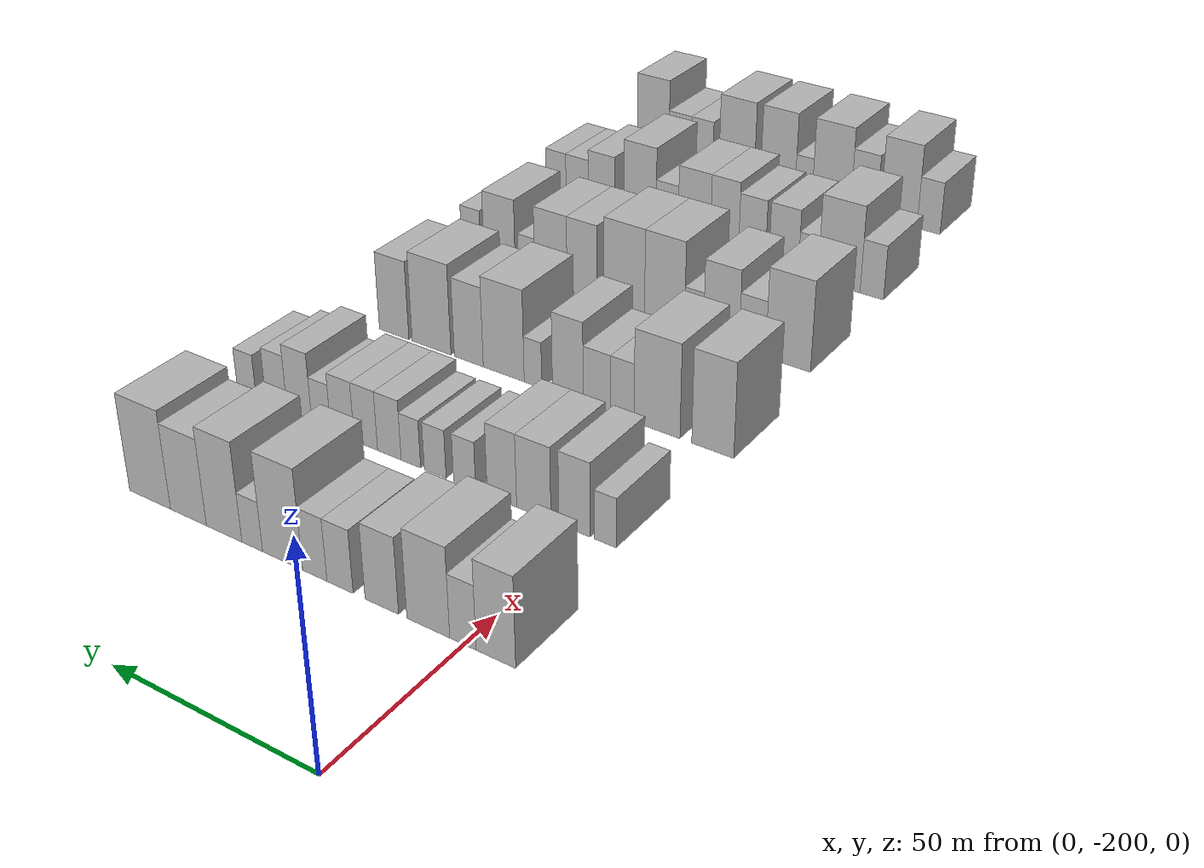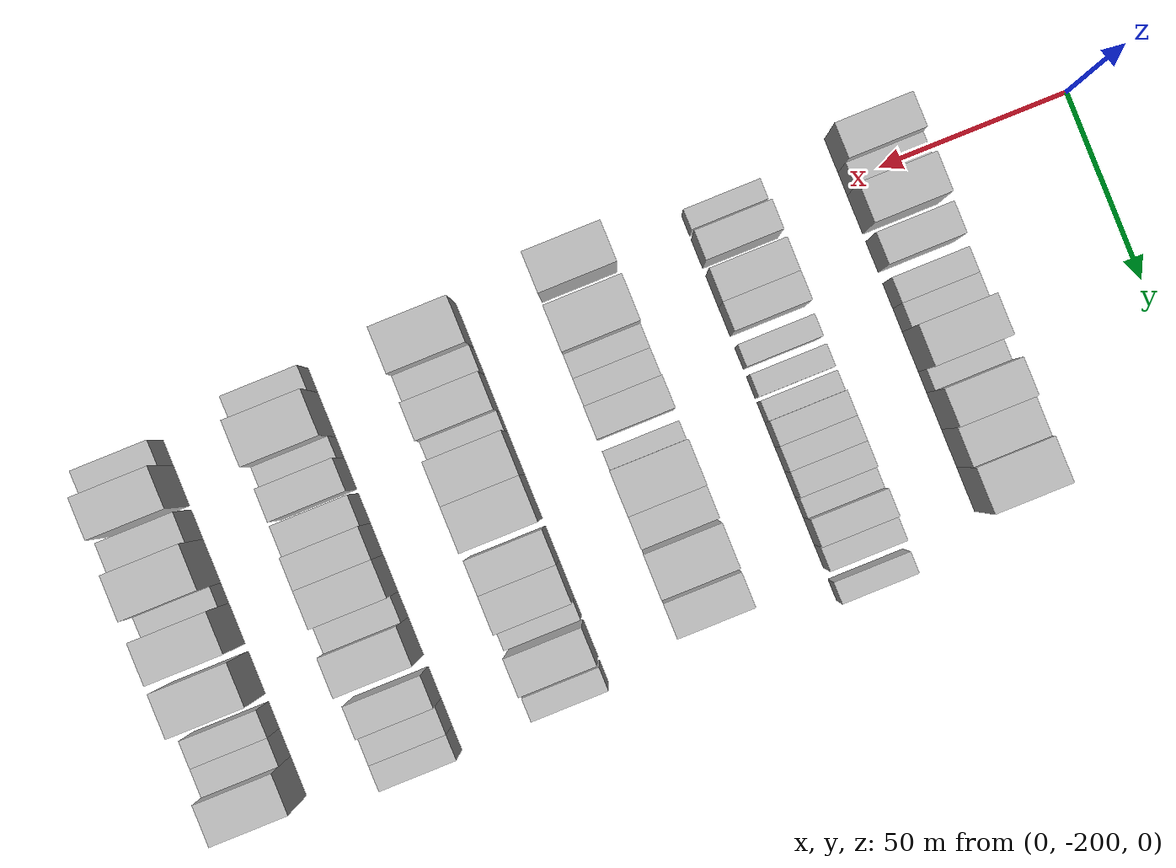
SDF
<sdf version="1.6">
 <world name="default">
  <model name="building_43">
   <static>1</static>
   <pose>50.0000 -207.1789 0 0.000000 0.000000 0.000000</pose>
   <link name="link">
    <pose>0 0 10.50 0 0 0</pose>
    <collision name="collision"><geometry><box><size>20.0000 9.0264 21.0000</size></box></geometry></collision>
    <visual name="visual">
     <cast_shadows>0</cast_shadows>
     <geometry><box><size>20.0000 9.0264 21.0000</size></box></geometry>
     <material>
      <script>
       <uri>model://HANNAS_wall/materials/scripts</uri>
       <uri>model://HANNAS_wall/materials/textures</uri>
       <name>vrc/HANNAS_wall</name>
      </script>
     </material>
    </visual>
   </link>
  </model>
  <model name="building_44">
   <static>1</static>
   <pose>50.0000 -199.5885 0 0.000000 0.000000 0.000000</pose>
   <link name="link">
    <pose>0 0 7.50 0 0 0</pose>
    <collision name="collision"><geometry><box><size>20.0000 6.1544 15.0000</size></box></geometry></collision>
    <visual name="visual">
     <cast_shadows>0</cast_shadows>
     <geometry><box><size>20.0000 6.1544 15.0000</size></box></geometry>
     <material>
      <script>
       <uri>model://HANNAS_wall/materials/scripts</uri>
       <uri>model://HANNAS_wall/materials/textures</uri>
       <name>vrc/HANNAS_wall</name>
      </script>
     </material>
    </visual>
   </link>
  </model>
  <model name="building_45">
   <static>1</static>
   <pose>50.0000 -191.4024 0 0.000000 0.000000 0.000000</pose>
   <link name="link">
    <pose>0 0 10.50 0 0 0</pose>
    <collision name="collision"><geometry><box><size>20.0000 10.2178 21.0000</size></box></geometry></collision>
    <visual name="visual">
     <cast_shadows>0</cast_shadows>
     <geometry><box><size>20.0000 10.2178 21.0000</size></box></geometry>
     <material>
      <script>
       <uri>model://HANNAS_wall/materials/scripts</uri>
       <uri>model://HANNAS_wall/materials/textures</uri>
       <name>vrc/HANNAS_wall</name>
      </script>
     </material>
    </visual>
   </link>
  </model>
  <model name="building_46">
   <static>1</static>
   <pose>50.0000 -180.1631 0 0.000000 0.000000 0.000000</pose>
   <link name="link">
    <pose>0 0 9.00 0 0 0</pose>
    <collision name="collision"><geometry><box><size>20.0000 8.2608 18.0000</size></box></geometry></collision>
    <visual name="visual">
     <cast_shadows>0</cast_shadows>
     <geometry><box><size>20.0000 8.2608 18.0000</size></box></geometry>
     <material>
      <script>
       <uri>model://HANNAS_wall/materials/scripts</uri>
       <uri>model://HANNAS_wall/materials/textures</uri>
       <name>vrc/HANNAS_wall</name>
      </script>
     </material>
    </visual>
   </link>
  </model>
  <model name="building_47">
   <static>1</static>
   <pose>50.0000 -169.7166 0 0.000000 0.000000 0.000000</pose>
   <link name="link">
    <pose>0 0 7.50 0 0 0</pose>
    <collision name="collision"><geometry><box><size>20.0000 6.6322 15.0000</size></box></geometry></collision>
    <visual name="visual">
     <cast_shadows>0</cast_shadows>
     <geometry><box><size>20.0000 6.6322 15.0000</size></box></geometry>
     <material>
      <script>
       <uri>model://HANNAS_wall/materials/scripts</uri>
       <uri>model://HANNAS_wall/materials/textures</uri>
       <name>vrc/HANNAS_wall</name>
      </script>
     </material>
    </visual>
   </link>
  </model>
  <model name="building_48">
   <static>1</static>
   <pose>50.0000 -163.2680 0 0.000000 0.000000 0.000000</pose>
   <link name="link">
    <pose>0 0 7.50 0 0 0</pose>
    <collision name="collision"><geometry><box><size>20.0000 6.2649 15.0000</size></box></geometry></collision>
    <visual name="visual">
     <cast_shadows>0</cast_shadows>
     <geometry><box><size>20.0000 6.2649 15.0000</size></box></geometry>
     <material>
      <script>
       <uri>model://HANNAS_wall/materials/scripts</uri>
       <uri>model://HANNAS_wall/materials/textures</uri>
       <name>vrc/HANNAS_wall</name>
      </script>
     </material>
    </visual>
   </link>
  </model>
  <model name="building_49">
   <static>1</static>
   <pose>50.0000 -154.8369 0 0.000000 0.000000 0.000000</pose>
   <link name="link">
    <pose>0 0 12.00 0 0 0</pose>
    <collision name="collision"><geometry><box><size>20.0000 10.5972 24.0000</size></box></geometry></collision>
    <visual name="visual">
     <cast_shadows>0</cast_shadows>
     <geometry><box><size>20.0000 10.5972 24.0000</size></box></geometry>
     <material>
      <script>
       <uri>model://HANNAS_wall/materials/scripts</uri>
       <uri>model://HANNAS_wall/materials/textures</uri>
       <name>vrc/HANNAS_wall</name>
      </script>
     </material>
    </visual>
   </link>
  </model>
  <model name="building_50">
   <static>1</static>
   <pose>50.0000 -146.7441 0 0.000000 0.000000 0.000000</pose>
   <link name="link">
    <pose>0 0 6.00 0 0 0</pose>
    <collision name="collision"><geometry><box><size>20.0000 5.5884 12.0000</size></box></geometry></collision>
    <visual name="visual">
     <cast_shadows>0</cast_shadows>
     <geometry><box><size>20.0000 5.5884 12.0000</size></box></geometry>
     <material>
      <script>
       <uri>model://HANNAS_wall/materials/scripts</uri>
       <uri>model://HANNAS_wall/materials/textures</uri>
       <name>vrc/HANNAS_wall</name>
      </script>
     </material>
    </visual>
   </link>
  </model>
  <model name="building_51">
   <static>1</static>
   <pose>50.0000 -139.0599 0 0.000000 0.000000 0.000000</pose>
   <link name="link">
    <pose>0 0 12.00 0 0 0</pose>
    <collision name="collision"><geometry><box><size>20.0000 9.7798 24.0000</size></box></geometry></collision>
    <visual name="visual">
     <cast_shadows>0</cast_shadows>
     <geometry><box><size>20.0000 9.7798 24.0000</size></box></geometry>
     <material>
      <script>
       <uri>model://HANNAS_wall/materials/scripts</uri>
       <uri>model://HANNAS_wall/materials/textures</uri>
       <name>vrc/HANNAS_wall</name>
      </script>
     </material>
    </visual>
   </link>
  </model>
  <model name="building_52">
   <static>1</static>
   <pose>50.0000 -129.0857 0 0.000000 0.000000 0.000000</pose>
   <link name="link">
    <pose>0 0 10.50 0 0 0</pose>
    <collision name="collision"><geometry><box><size>20.0000 10.1687 21.0000</size></box></geometry></collision>
    <visual name="visual">
     <cast_shadows>0</cast_shadows>
     <geometry><box><size>20.0000 10.1687 21.0000</size></box></geometry>
     <material>
      <script>
       <uri>model://HANNAS_wall/materials/scripts</uri>
       <uri>model://HANNAS_wall/materials/textures</uri>
       <name>vrc/HANNAS_wall</name>
      </script>
     </material>
    </visual>
   </link>
  </model>
  <model name="building_53">
   <static>1</static>
   <pose>50.0000 -118.0740 0 0.000000 0.000000 0.000000</pose>
   <link name="link">
    <pose>0 0 12.00 0 0 0</pose>
    <collision name="collision"><geometry><box><size>20.0000 11.8548 24.0000</size></box></geometry></collision>
    <visual name="visual">
     <cast_shadows>0</cast_shadows>
     <geometry><box><size>20.0000 11.8548 24.0000</size></box></geometry>
     <material>
      <script>
       <uri>model://HANNAS_wall/materials/scripts</uri>
       <uri>model://HANNAS_wall/materials/textures</uri>
       <name>vrc/HANNAS_wall</name>
      </script>
     </material>
    </visual>
   </link>
  </model>
  <model name="building_187">
   <static>1</static>
   <pose>90.0000 -204.5550 0 0.000000 0.000000 0.000000</pose>
   <link name="link">
    <pose>0 0 6.00 0 0 0</pose>
    <collision name="collision"><geometry><box><size>20.0000 5.3151 12.0000</size></box></geometry></collision>
    <visual name="visual">
     <cast_shadows>0</cast_shadows>
     <geometry><box><size>20.0000 5.3151 12.0000</size></box></geometry>
     <material>
      <script>
       <uri>model://HANNAS_wall/materials/scripts</uri>
       <uri>model://HANNAS_wall/materials/textures</uri>
       <name>vrc/HANNAS_wall</name>
      </script>
     </material>
    </visual>
   </link>
  </model>
  <model name="building_188">
   <static>1</static>
   <pose>90.0000 -197.0716 0 0.000000 0.000000 0.000000</pose>
   <link name="link">
    <pose>0 0 9.00 0 0 0</pose>
    <collision name="collision"><geometry><box><size>20.0000 7.6517 18.0000</size></box></geometry></collision>
    <visual name="visual">
     <cast_shadows>0</cast_shadows>
     <geometry><box><size>20.0000 7.6517 18.0000</size></box></geometry>
     <material>
      <script>
       <uri>model://HANNAS_wall/materials/scripts</uri>
       <uri>model://HANNAS_wall/materials/textures</uri>
       <name>vrc/HANNAS_wall</name>
      </script>
     </material>
    </visual>
   </link>
  </model>
  <model name="building_189">
   <static>1</static>
   <pose>90.0000 -186.9341 0 0.000000 0.000000 0.000000</pose>
   <link name="link">
    <pose>0 0 9.00 0 0 0</pose>
    <collision name="collision"><geometry><box><size>20.0000 8.6234 18.0000</size></box></geometry></collision>
    <visual name="visual">
     <cast_shadows>0</cast_shadows>
     <geometry><box><size>20.0000 8.6234 18.0000</size></box></geometry>
     <material>
      <script>
       <uri>model://HANNAS_wall/materials/scripts</uri>
       <uri>model://HANNAS_wall/materials/textures</uri>
       <name>vrc/HANNAS_wall</name>
      </script>
     </material>
    </visual>
   </link>
  </model>
  <model name="building_190">
   <static>1</static>
   <pose>90.0000 -178.8447 0 0.000000 0.000000 0.000000</pose>
   <link name="link">
    <pose>0 0 9.00 0 0 0</pose>
    <collision name="collision"><geometry><box><size>20.0000 7.5552 18.0000</size></box></geometry></collision>
    <visual name="visual">
     <cast_shadows>0</cast_shadows>
     <geometry><box><size>20.0000 7.5552 18.0000</size></box></geometry>
     <material>
      <script>
       <uri>model://HANNAS_wall/materials/scripts</uri>
       <uri>model://HANNAS_wall/materials/textures</uri>
       <name>vrc/HANNAS_wall</name>
      </script>
     </material>
    </visual>
   </link>
  </model>
  <model name="building_191">
   <static>1</static>
   <pose>90.0000 -169.1642 0 0.000000 0.000000 0.000000</pose>
   <link name="link">
    <pose>0 0 6.00 0 0 0</pose>
    <collision name="collision"><geometry><box><size>20.0000 5.8058 12.0000</size></box></geometry></collision>
    <visual name="visual">
     <cast_shadows>0</cast_shadows>
     <geometry><box><size>20.0000 5.8058 12.0000</size></box></geometry>
     <material>
      <script>
       <uri>model://HANNAS_wall/materials/scripts</uri>
       <uri>model://HANNAS_wall/materials/textures</uri>
       <name>vrc/HANNAS_wall</name>
      </script>
     </material>
    </visual>
   </link>
  </model>
  <model name="building_192">
   <static>1</static>
   <pose>90.0000 -161.3345 0 0.000000 0.000000 0.000000</pose>
   <link name="link">
    <pose>0 0 6.00 0 0 0</pose>
    <collision name="collision"><geometry><box><size>20.0000 5.8537 12.0000</size></box></geometry></collision>
    <visual name="visual">
     <cast_shadows>0</cast_shadows>
     <geometry><box><size>20.0000 5.8537 12.0000</size></box></geometry>
     <material>
      <script>
       <uri>model://HANNAS_wall/materials/scripts</uri>
       <uri>model://HANNAS_wall/materials/textures</uri>
       <name>vrc/HANNAS_wall</name>
      </script>
     </material>
    </visual>
   </link>
  </model>
  <model name="building_193">
   <static>1</static>
   <pose>90.0000 -154.7528 0 0.000000 0.000000 0.000000</pose>
   <link name="link">
    <pose>0 0 6.00 0 0 0</pose>
    <collision name="collision"><geometry><box><size>20.0000 5.3096 12.0000</size></box></geometry></collision>
    <visual name="visual">
     <cast_shadows>0</cast_shadows>
     <geometry><box><size>20.0000 5.3096 12.0000</size></box></geometry>
     <material>
      <script>
       <uri>model://HANNAS_wall/materials/scripts</uri>
       <uri>model://HANNAS_wall/materials/textures</uri>
       <name>vrc/HANNAS_wall</name>
      </script>
     </material>
    </visual>
   </link>
  </model>
  <model name="building_194">
   <static>1</static>
   <pose>90.0000 -148.8181 0 0.000000 0.000000 0.000000</pose>
   <link name="link">
    <pose>0 0 7.50 0 0 0</pose>
    <collision name="collision"><geometry><box><size>20.0000 6.5597 15.0000</size></box></geometry></collision>
    <visual name="visual">
     <cast_shadows>0</cast_shadows>
     <geometry><box><size>20.0000 6.5597 15.0000</size></box></geometry>
     <material>
      <script>
       <uri>model://HANNAS_wall/materials/scripts</uri>
       <uri>model://HANNAS_wall/materials/textures</uri>
       <name>vrc/HANNAS_wall</name>
      </script>
     </material>
    </visual>
   </link>
  </model>
  <model name="building_195">
   <static>1</static>
   <pose>90.0000 -142.2598 0 0.000000 0.000000 0.000000</pose>
   <link name="link">
    <pose>0 0 7.50 0 0 0</pose>
    <collision name="collision"><geometry><box><size>20.0000 6.5570 15.0000</size></box></geometry></collision>
    <visual name="visual">
     <cast_shadows>0</cast_shadows>
     <geometry><box><size>20.0000 6.5570 15.0000</size></box></geometry>
     <material>
      <script>
       <uri>model://HANNAS_wall/materials/scripts</uri>
       <uri>model://HANNAS_wall/materials/textures</uri>
       <name>vrc/HANNAS_wall</name>
      </script>
     </material>
    </visual>
   </link>
  </model>
  <model name="building_196">
   <static>1</static>
   <pose>90.0000 -135.6308 0 0.000000 0.000000 0.000000</pose>
   <link name="link">
    <pose>0 0 7.50 0 0 0</pose>
    <collision name="collision"><geometry><box><size>20.0000 6.7011 15.0000</size></box></geometry></collision>
    <visual name="visual">
     <cast_shadows>0</cast_shadows>
     <geometry><box><size>20.0000 6.7011 15.0000</size></box></geometry>
     <material>
      <script>
       <uri>model://HANNAS_wall/materials/scripts</uri>
       <uri>model://HANNAS_wall/materials/textures</uri>
       <name>vrc/HANNAS_wall</name>
      </script>
     </material>
    </visual>
   </link>
  </model>
  <model name="building_197">
   <static>1</static>
   <pose>90.0000 -129.5344 0 0.000000 0.000000 0.000000</pose>
   <link name="link">
    <pose>0 0 6.00 0 0 0</pose>
    <collision name="collision"><geometry><box><size>20.0000 5.4917 12.0000</size></box></geometry></collision>
    <visual name="visual">
     <cast_shadows>0</cast_shadows>
     <geometry><box><size>20.0000 5.4917 12.0000</size></box></geometry>
     <material>
      <script>
       <uri>model://HANNAS_wall/materials/scripts</uri>
       <uri>model://HANNAS_wall/materials/textures</uri>
       <name>vrc/HANNAS_wall</name>
      </script>
     </material>
    </visual>
   </link>
  </model>
  <model name="building_198">
   <static>1</static>
   <pose>90.0000 -123.1808 0 0.000000 0.000000 0.000000</pose>
   <link name="link">
    <pose>0 0 9.00 0 0 0</pose>
    <collision name="collision"><geometry><box><size>20.0000 7.2155 18.0000</size></box></geometry></collision>
    <visual name="visual">
     <cast_shadows>0</cast_shadows>
     <geometry><box><size>20.0000 7.2155 18.0000</size></box></geometry>
     <material>
      <script>
       <uri>model://HANNAS_wall/materials/scripts</uri>
       <uri>model://HANNAS_wall/materials/textures</uri>
       <name>vrc/HANNAS_wall</name>
      </script>
     </material>
    </visual>
   </link>
  </model>
  <model name="building_199">
   <static>1</static>
   <pose>90.0000 -116.4066 0 0.000000 0.000000 0.000000</pose>
   <link name="link">
    <pose>0 0 7.50 0 0 0</pose>
    <collision name="collision"><geometry><box><size>20.0000 6.3328 15.0000</size></box></geometry></collision>
    <visual name="visual">
     <cast_shadows>0</cast_shadows>
     <geometry><box><size>20.0000 6.3328 15.0000</size></box></geometry>
     <material>
      <script>
       <uri>model://HANNAS_wall/materials/scripts</uri>
       <uri>model://HANNAS_wall/materials/textures</uri>
       <name>vrc/HANNAS_wall</name>
      </script>
     </material>
    </visual>
   </link>
  </model>
  <model name="building_200">
   <static>1</static>
   <pose>90.0000 -107.4004 0 0.000000 0.000000 0.000000</pose>
   <link name="link">
    <pose>0 0 6.00 0 0 0</pose>
    <collision name="collision"><geometry><box><size>20.0000 5.6796 12.0000</size></box></geometry></collision>
    <visual name="visual">
     <cast_shadows>0</cast_shadows>
     <geometry><box><size>20.0000 5.6796 12.0000</size></box></geometry>
     <material>
      <script>
       <uri>model://HANNAS_wall/materials/scripts</uri>
       <uri>model://HANNAS_wall/materials/textures</uri>
       <name>vrc/HANNAS_wall</name>
      </script>
     </material>
    </visual>
   </link>
  </model>
  <model name="building_327">
   <static>1</static>
   <pose>130.0000 -205.5809 0 0.000000 0.000000 0.000000</pose>
   <link name="link">
    <pose>0 0 12.00 0 0 0</pose>
    <collision name="collision"><geometry><box><size>20.0000 10.5351 24.0000</size></box></geometry></collision>
    <visual name="visual">
     <cast_shadows>0</cast_shadows>
     <geometry><box><size>20.0000 10.5351 24.0000</size></box></geometry>
     <material>
      <script>
       <uri>model://HANNAS_wall/materials/scripts</uri>
       <uri>model://HANNAS_wall/materials/textures</uri>
       <name>vrc/HANNAS_wall</name>
      </script>
     </material>
    </visual>
   </link>
  </model>
  <model name="building_328">
   <static>1</static>
   <pose>130.0000 -191.3717 0 0.000000 0.000000 0.000000</pose>
   <link name="link">
    <pose>0 0 12.00 0 0 0</pose>
    <collision name="collision"><geometry><box><size>20.0000 11.8834 24.0000</size></box></geometry></collision>
    <visual name="visual">
     <cast_shadows>0</cast_shadows>
     <geometry><box><size>20.0000 11.8834 24.0000</size></box></geometry>
     <material>
      <script>
       <uri>model://HANNAS_wall/materials/scripts</uri>
       <uri>model://HANNAS_wall/materials/textures</uri>
       <name>vrc/HANNAS_wall</name>
      </script>
     </material>
    </visual>
   </link>
  </model>
  <model name="building_329">
   <static>1</static>
   <pose>130.0000 -182.3049 0 0.000000 0.000000 0.000000</pose>
   <link name="link">
    <pose>0 0 7.50 0 0 0</pose>
    <collision name="collision"><geometry><box><size>20.0000 6.2501 15.0000</size></box></geometry></collision>
    <visual name="visual">
     <cast_shadows>0</cast_shadows>
     <geometry><box><size>20.0000 6.2501 15.0000</size></box></geometry>
     <material>
      <script>
       <uri>model://HANNAS_wall/materials/scripts</uri>
       <uri>model://HANNAS_wall/materials/textures</uri>
       <name>vrc/HANNAS_wall</name>
      </script>
     </material>
    </visual>
   </link>
  </model>
  <model name="building_330">
   <static>1</static>
   <pose>130.0000 -175.5103 0 0.000000 0.000000 0.000000</pose>
   <link name="link">
    <pose>0 0 7.50 0 0 0</pose>
    <collision name="collision"><geometry><box><size>20.0000 7.3391 15.0000</size></box></geometry></collision>
    <visual name="visual">
     <cast_shadows>0</cast_shadows>
     <geometry><box><size>20.0000 7.3391 15.0000</size></box></geometry>
     <material>
      <script>
       <uri>model://HANNAS_wall/materials/scripts</uri>
       <uri>model://HANNAS_wall/materials/textures</uri>
       <name>vrc/HANNAS_wall</name>
      </script>
     </material>
    </visual>
   </link>
  </model>
  <model name="building_331">
   <static>1</static>
   <pose>130.0000 -167.6262 0 0.000000 0.000000 0.000000</pose>
   <link name="link">
    <pose>0 0 10.50 0 0 0</pose>
    <collision name="collision"><geometry><box><size>20.0000 8.4292 21.0000</size></box></geometry></collision>
    <visual name="visual">
     <cast_shadows>0</cast_shadows>
     <geometry><box><size>20.0000 8.4292 21.0000</size></box></geometry>
     <material>
      <script>
       <uri>model://HANNAS_wall/materials/scripts</uri>
       <uri>model://HANNAS_wall/materials/textures</uri>
       <name>vrc/HANNAS_wall</name>
      </script>
     </material>
    </visual>
   </link>
  </model>
  <model name="building_332">
   <static>1</static>
   <pose>130.0000 -157.9571 0 0.000000 0.000000 0.000000</pose>
   <link name="link">
    <pose>0 0 6.00 0 0 0</pose>
    <collision name="collision"><geometry><box><size>20.0000 4.9092 12.0000</size></box></geometry></collision>
    <visual name="visual">
     <cast_shadows>0</cast_shadows>
     <geometry><box><size>20.0000 4.9092 12.0000</size></box></geometry>
     <material>
      <script>
       <uri>model://HANNAS_wall/materials/scripts</uri>
       <uri>model://HANNAS_wall/materials/textures</uri>
       <name>vrc/HANNAS_wall</name>
      </script>
     </material>
    </visual>
   </link>
  </model>
  <model name="building_333">
   <static>1</static>
   <pose>130.0000 -149.6324 0 0.000000 0.000000 0.000000</pose>
   <link name="link">
    <pose>0 0 12.00 0 0 0</pose>
    <collision name="collision"><geometry><box><size>20.0000 11.7401 24.0000</size></box></geometry></collision>
    <visual name="visual">
     <cast_shadows>0</cast_shadows>
     <geometry><box><size>20.0000 11.7401 24.0000</size></box></geometry>
     <material>
      <script>
       <uri>model://HANNAS_wall/materials/scripts</uri>
       <uri>model://HANNAS_wall/materials/textures</uri>
       <name>vrc/HANNAS_wall</name>
      </script>
     </material>
    </visual>
   </link>
  </model>
  <model name="building_334">
   <static>1</static>
   <pose>130.0000 -139.5318 0 0.000000 0.000000 0.000000</pose>
   <link name="link">
    <pose>0 0 10.50 0 0 0</pose>
    <collision name="collision"><geometry><box><size>20.0000 8.4611 21.0000</size></box></geometry></collision>
    <visual name="visual">
     <cast_shadows>0</cast_shadows>
     <geometry><box><size>20.0000 8.4611 21.0000</size></box></geometry>
     <material>
      <script>
       <uri>model://HANNAS_wall/materials/scripts</uri>
       <uri>model://HANNAS_wall/materials/textures</uri>
       <name>vrc/HANNAS_wall</name>
      </script>
     </material>
    </visual>
   </link>
  </model>
  <model name="building_335">
   <static>1</static>
   <pose>130.0000 -128.4757 0 0.000000 0.000000 0.000000</pose>
   <link name="link">
    <pose>0 0 12.00 0 0 0</pose>
    <collision name="collision"><geometry><box><size>20.0000 11.6511 24.0000</size></box></geometry></collision>
    <visual name="visual">
     <cast_shadows>0</cast_shadows>
     <geometry><box><size>20.0000 11.6511 24.0000</size></box></geometry>
     <material>
      <script>
       <uri>model://HANNAS_wall/materials/scripts</uri>
       <uri>model://HANNAS_wall/materials/textures</uri>
       <name>vrc/HANNAS_wall</name>
      </script>
     </material>
    </visual>
   </link>
  </model>
  <model name="building_336">
   <static>1</static>
   <pose>130.0000 -117.1173 0 0.000000 0.000000 0.000000</pose>
   <link name="link">
    <pose>0 0 10.50 0 0 0</pose>
    <collision name="collision"><geometry><box><size>20.0000 9.0656 21.0000</size></box></geometry></collision>
    <visual name="visual">
     <cast_shadows>0</cast_shadows>
     <geometry><box><size>20.0000 9.0656 21.0000</size></box></geometry>
     <material>
      <script>
       <uri>model://HANNAS_wall/materials/scripts</uri>
       <uri>model://HANNAS_wall/materials/textures</uri>
       <name>vrc/HANNAS_wall</name>
      </script>
     </material>
    </visual>
   </link>
  </model>
  <model name="building_460">
   <static>1</static>
   <pose>170.0000 -202.0453 0 0.000000 0.000000 0.000000</pose>
   <link name="link">
    <pose>0 0 12.00 0 0 0</pose>
    <collision name="collision"><geometry><box><size>20.0000 11.8925 24.0000</size></box></geometry></collision>
    <visual name="visual">
     <cast_shadows>0</cast_shadows>
     <geometry><box><size>20.0000 11.8925 24.0000</size></box></geometry>
     <material>
      <script>
       <uri>model://HANNAS_wall/materials/scripts</uri>
       <uri>model://HANNAS_wall/materials/textures</uri>
       <name>vrc/HANNAS_wall</name>
      </script>
     </material>
    </visual>
   </link>
  </model>
  <model name="building_461">
   <static>1</static>
   <pose>170.0000 -192.5187 0 0.000000 0.000000 0.000000</pose>
   <link name="link">
    <pose>0 0 7.50 0 0 0</pose>
    <collision name="collision"><geometry><box><size>20.0000 7.1606 15.0000</size></box></geometry></collision>
    <visual name="visual">
     <cast_shadows>0</cast_shadows>
     <geometry><box><size>20.0000 7.1606 15.0000</size></box></geometry>
     <material>
      <script>
       <uri>model://HANNAS_wall/materials/scripts</uri>
       <uri>model://HANNAS_wall/materials/textures</uri>
       <name>vrc/HANNAS_wall</name>
      </script>
     </material>
    </visual>
   </link>
  </model>
  <model name="building_462">
   <static>1</static>
   <pose>170.0000 -184.0476 0 0.000000 0.000000 0.000000</pose>
   <link name="link">
    <pose>0 0 10.50 0 0 0</pose>
    <collision name="collision"><geometry><box><size>20.0000 9.7817 21.0000</size></box></geometry></collision>
    <visual name="visual">
     <cast_shadows>0</cast_shadows>
     <geometry><box><size>20.0000 9.7817 21.0000</size></box></geometry>
     <material>
      <script>
       <uri>model://HANNAS_wall/materials/scripts</uri>
       <uri>model://HANNAS_wall/materials/textures</uri>
       <name>vrc/HANNAS_wall</name>
      </script>
     </material>
    </visual>
   </link>
  </model>
  <model name="building_463">
   <static>1</static>
   <pose>170.0000 -176.5023 0 0.000000 0.000000 0.000000</pose>
   <link name="link">
    <pose>0 0 6.00 0 0 0</pose>
    <collision name="collision"><geometry><box><size>20.0000 5.3089 12.0000</size></box></geometry></collision>
    <visual name="visual">
     <cast_shadows>0</cast_shadows>
     <geometry><box><size>20.0000 5.3089 12.0000</size></box></geometry>
     <material>
      <script>
       <uri>model://HANNAS_wall/materials/scripts</uri>
       <uri>model://HANNAS_wall/materials/textures</uri>
       <name>vrc/HANNAS_wall</name>
      </script>
     </material>
    </visual>
   </link>
  </model>
  <model name="building_464">
   <static>1</static>
   <pose>170.0000 -168.1661 0 0.000000 0.000000 0.000000</pose>
   <link name="link">
    <pose>0 0 12.00 0 0 0</pose>
    <collision name="collision"><geometry><box><size>20.0000 11.3635 24.0000</size></box></geometry></collision>
    <visual name="visual">
     <cast_shadows>0</cast_shadows>
     <geometry><box><size>20.0000 11.3635 24.0000</size></box></geometry>
     <material>
      <script>
       <uri>model://HANNAS_wall/materials/scripts</uri>
       <uri>model://HANNAS_wall/materials/textures</uri>
       <name>vrc/HANNAS_wall</name>
      </script>
     </material>
    </visual>
   </link>
  </model>
  <model name="building_465">
   <static>1</static>
   <pose>170.0000 -156.5810 0 0.000000 0.000000 0.000000</pose>
   <link name="link">
    <pose>0 0 12.00 0 0 0</pose>
    <collision name="collision"><geometry><box><size>20.0000 11.8067 24.0000</size></box></geometry></collision>
    <visual name="visual">
     <cast_shadows>0</cast_shadows>
     <geometry><box><size>20.0000 11.8067 24.0000</size></box></geometry>
     <material>
      <script>
       <uri>model://HANNAS_wall/materials/scripts</uri>
       <uri>model://HANNAS_wall/materials/textures</uri>
       <name>vrc/HANNAS_wall</name>
      </script>
     </material>
    </visual>
   </link>
  </model>
  <model name="building_466">
   <static>1</static>
   <pose>170.0000 -144.1548 0 0.000000 0.000000 0.000000</pose>
   <link name="link">
    <pose>0 0 10.50 0 0 0</pose>
    <collision name="collision"><geometry><box><size>20.0000 9.0457 21.0000</size></box></geometry></collision>
    <visual name="visual">
     <cast_shadows>0</cast_shadows>
     <geometry><box><size>20.0000 9.0457 21.0000</size></box></geometry>
     <material>
      <script>
       <uri>model://HANNAS_wall/materials/scripts</uri>
       <uri>model://HANNAS_wall/materials/textures</uri>
       <name>vrc/HANNAS_wall</name>
      </script>
     </material>
    </visual>
   </link>
  </model>
  <model name="building_467">
   <static>1</static>
   <pose>170.0000 -134.6785 0 0.000000 0.000000 0.000000</pose>
   <link name="link">
    <pose>0 0 10.50 0 0 0</pose>
    <collision name="collision"><geometry><box><size>20.0000 9.9068 21.0000</size></box></geometry></collision>
    <visual name="visual">
     <cast_shadows>0</cast_shadows>
     <geometry><box><size>20.0000 9.9068 21.0000</size></box></geometry>
     <material>
      <script>
       <uri>model://HANNAS_wall/materials/scripts</uri>
       <uri>model://HANNAS_wall/materials/textures</uri>
       <name>vrc/HANNAS_wall</name>
      </script>
     </material>
    </visual>
   </link>
  </model>
  <model name="building_468">
   <static>1</static>
   <pose>170.0000 -127.2165 0 0.000000 0.000000 0.000000</pose>
   <link name="link">
    <pose>0 0 6.00 0 0 0</pose>
    <collision name="collision"><geometry><box><size>20.0000 5.0173 12.0000</size></box></geometry></collision>
    <visual name="visual">
     <cast_shadows>0</cast_shadows>
     <geometry><box><size>20.0000 5.0173 12.0000</size></box></geometry>
     <material>
      <script>
       <uri>model://HANNAS_wall/materials/scripts</uri>
       <uri>model://HANNAS_wall/materials/textures</uri>
       <name>vrc/HANNAS_wall</name>
      </script>
     </material>
    </visual>
   </link>
  </model>
  <model name="building_469">
   <static>1</static>
   <pose>170.0000 -118.7653 0 0.000000 0.000000 0.000000</pose>
   <link name="link">
    <pose>0 0 10.50 0 0 0</pose>
    <collision name="collision"><geometry><box><size>20.0000 9.8852 21.0000</size></box></geometry></collision>
    <visual name="visual">
     <cast_shadows>0</cast_shadows>
     <geometry><box><size>20.0000 9.8852 21.0000</size></box></geometry>
     <material>
      <script>
       <uri>model://HANNAS_wall/materials/scripts</uri>
       <uri>model://HANNAS_wall/materials/textures</uri>
       <name>vrc/HANNAS_wall</name>
      </script>
     </material>
    </visual>
   </link>
  </model>
  <model name="building_470">
   <static>1</static>
   <pose>170.0000 -109.7491 0 0.000000 0.000000 0.000000</pose>
   <link name="link">
    <pose>0 0 7.50 0 0 0</pose>
    <collision name="collision"><geometry><box><size>20.0000 6.1470 15.0000</size></box></geometry></collision>
    <visual name="visual">
     <cast_shadows>0</cast_shadows>
     <geometry><box><size>20.0000 6.1470 15.0000</size></box></geometry>
     <material>
      <script>
       <uri>model://HANNAS_wall/materials/scripts</uri>
       <uri>model://HANNAS_wall/materials/textures</uri>
       <name>vrc/HANNAS_wall</name>
      </script>
     </material>
    </visual>
   </link>
  </model>
  <model name="building_594">
   <static>1</static>
   <pose>210.0000 -203.7352 0 0.000000 0.000000 0.000000</pose>
   <link name="link">
    <pose>0 0 7.50 0 0 0</pose>
    <collision name="collision"><geometry><box><size>20.0000 6.4518 15.0000</size></box></geometry></collision>
    <visual name="visual">
     <cast_shadows>0</cast_shadows>
     <geometry><box><size>20.0000 6.4518 15.0000</size></box></geometry>
     <material>
      <script>
       <uri>model://HANNAS_wall/materials/scripts</uri>
       <uri>model://HANNAS_wall/materials/textures</uri>
       <name>vrc/HANNAS_wall</name>
      </script>
     </material>
    </visual>
   </link>
  </model>
  <model name="building_595">
   <static>1</static>
   <pose>210.0000 -194.5848 0 0.000000 0.000000 0.000000</pose>
   <link name="link">
    <pose>0 0 12.00 0 0 0</pose>
    <collision name="collision"><geometry><box><size>20.0000 11.8490 24.0000</size></box></geometry></collision>
    <visual name="visual">
     <cast_shadows>0</cast_shadows>
     <geometry><box><size>20.0000 11.8490 24.0000</size></box></geometry>
     <material>
      <script>
       <uri>model://HANNAS_wall/materials/scripts</uri>
       <uri>model://HANNAS_wall/materials/textures</uri>
       <name>vrc/HANNAS_wall</name>
      </script>
     </material>
    </visual>
   </link>
  </model>
  <model name="building_596">
   <static>1</static>
   <pose>210.0000 -185.8615 0 0.000000 0.000000 0.000000</pose>
   <link name="link">
    <pose>0 0 6.00 0 0 0</pose>
    <collision name="collision"><geometry><box><size>20.0000 5.5976 12.0000</size></box></geometry></collision>
    <visual name="visual">
     <cast_shadows>0</cast_shadows>
     <geometry><box><size>20.0000 5.5976 12.0000</size></box></geometry>
     <material>
      <script>
       <uri>model://HANNAS_wall/materials/scripts</uri>
       <uri>model://HANNAS_wall/materials/textures</uri>
       <name>vrc/HANNAS_wall</name>
      </script>
     </material>
    </visual>
   </link>
  </model>
  <model name="building_597">
   <static>1</static>
   <pose>210.0000 -178.7883 0 0.000000 0.000000 0.000000</pose>
   <link name="link">
    <pose>0 0 9.00 0 0 0</pose>
    <collision name="collision"><geometry><box><size>20.0000 8.5487 18.0000</size></box></geometry></collision>
    <visual name="visual">
     <cast_shadows>0</cast_shadows>
     <geometry><box><size>20.0000 8.5487 18.0000</size></box></geometry>
     <material>
      <script>
       <uri>model://HANNAS_wall/materials/scripts</uri>
       <uri>model://HANNAS_wall/materials/textures</uri>
       <name>vrc/HANNAS_wall</name>
      </script>
     </material>
    </visual>
   </link>
  </model>
  <model name="building_598">
   <static>1</static>
   <pose>210.0000 -169.5409 0 0.000000 0.000000 0.000000</pose>
   <link name="link">
    <pose>0 0 9.00 0 0 0</pose>
    <collision name="collision"><geometry><box><size>20.0000 7.9462 18.0000</size></box></geometry></collision>
    <visual name="visual">
     <cast_shadows>0</cast_shadows>
     <geometry><box><size>20.0000 7.9462 18.0000</size></box></geometry>
     <material>
      <script>
       <uri>model://HANNAS_wall/materials/scripts</uri>
       <uri>model://HANNAS_wall/materials/textures</uri>
       <name>vrc/HANNAS_wall</name>
      </script>
     </material>
    </visual>
   </link>
  </model>
  <model name="building_599">
   <static>1</static>
   <pose>210.0000 -161.3400 0 0.000000 0.000000 0.000000</pose>
   <link name="link">
    <pose>0 0 10.50 0 0 0</pose>
    <collision name="collision"><geometry><box><size>20.0000 8.4556 21.0000</size></box></geometry></collision>
    <visual name="visual">
     <cast_shadows>0</cast_shadows>
     <geometry><box><size>20.0000 8.4556 21.0000</size></box></geometry>
     <material>
      <script>
       <uri>model://HANNAS_wall/materials/scripts</uri>
       <uri>model://HANNAS_wall/materials/textures</uri>
       <name>vrc/HANNAS_wall</name>
      </script>
     </material>
    </visual>
   </link>
  </model>
  <model name="building_600">
   <static>1</static>
   <pose>210.0000 -152.1922 0 0.000000 0.000000 0.000000</pose>
   <link name="link">
    <pose>0 0 10.50 0 0 0</pose>
    <collision name="collision"><geometry><box><size>20.0000 9.8400 21.0000</size></box></geometry></collision>
    <visual name="visual">
     <cast_shadows>0</cast_shadows>
     <geometry><box><size>20.0000 9.8400 21.0000</size></box></geometry>
     <material>
      <script>
       <uri>model://HANNAS_wall/materials/scripts</uri>
       <uri>model://HANNAS_wall/materials/textures</uri>
       <name>vrc/HANNAS_wall</name>
      </script>
     </material>
    </visual>
   </link>
  </model>
  <model name="building_601">
   <static>1</static>
   <pose>210.0000 -143.8451 0 0.000000 0.000000 0.000000</pose>
   <link name="link">
    <pose>0 0 7.50 0 0 0</pose>
    <collision name="collision"><geometry><box><size>20.0000 6.8542 15.0000</size></box></geometry></collision>
    <visual name="visual">
     <cast_shadows>0</cast_shadows>
     <geometry><box><size>20.0000 6.8542 15.0000</size></box></geometry>
     <material>
      <script>
       <uri>model://HANNAS_wall/materials/scripts</uri>
       <uri>model://HANNAS_wall/materials/textures</uri>
       <name>vrc/HANNAS_wall</name>
      </script>
     </material>
    </visual>
   </link>
  </model>
  <model name="building_602">
   <static>1</static>
   <pose>210.0000 -135.3326 0 0.000000 0.000000 0.000000</pose>
   <link name="link">
    <pose>0 0 12.00 0 0 0</pose>
    <collision name="collision"><geometry><box><size>20.0000 10.1708 24.0000</size></box></geometry></collision>
    <visual name="visual">
     <cast_shadows>0</cast_shadows>
     <geometry><box><size>20.0000 10.1708 24.0000</size></box></geometry>
     <material>
      <script>
       <uri>model://HANNAS_wall/materials/scripts</uri>
       <uri>model://HANNAS_wall/materials/textures</uri>
       <name>vrc/HANNAS_wall</name>
      </script>
     </material>
    </visual>
   </link>
  </model>
  <model name="building_603">
   <static>1</static>
   <pose>210.0000 -123.0055 0 0.000000 0.000000 0.000000</pose>
   <link name="link">
    <pose>0 0 9.00 0 0 0</pose>
    <collision name="collision"><geometry><box><size>20.0000 8.4832 18.0000</size></box></geometry></collision>
    <visual name="visual">
     <cast_shadows>0</cast_shadows>
     <geometry><box><size>20.0000 8.4832 18.0000</size></box></geometry>
     <material>
      <script>
       <uri>model://HANNAS_wall/materials/scripts</uri>
       <uri>model://HANNAS_wall/materials/textures</uri>
       <name>vrc/HANNAS_wall</name>
      </script>
     </material>
    </visual>
   </link>
  </model>
  <model name="building_604">
   <static>1</static>
   <pose>210.0000 -115.1313 0 0.000000 0.000000 0.000000</pose>
   <link name="link">
    <pose>0 0 7.50 0 0 0</pose>
    <collision name="collision"><geometry><box><size>20.0000 7.2652 15.0000</size></box></geometry></collision>
    <visual name="visual">
     <cast_shadows>0</cast_shadows>
     <geometry><box><size>20.0000 7.2652 15.0000</size></box></geometry>
     <material>
      <script>
       <uri>model://HANNAS_wall/materials/scripts</uri>
       <uri>model://HANNAS_wall/materials/textures</uri>
       <name>vrc/HANNAS_wall</name>
      </script>
     </material>
    </visual>
   </link>
  </model>
  <model name="building_605">
   <static>1</static>
   <pose>210.0000 -108.1805 0 0.000000 0.000000 0.000000</pose>
   <link name="link">
    <pose>0 0 7.50 0 0 0</pose>
    <collision name="collision"><geometry><box><size>20.0000 6.6364 15.0000</size></box></geometry></collision>
    <visual name="visual">
     <cast_shadows>0</cast_shadows>
     <geometry><box><size>20.0000 6.6364 15.0000</size></box></geometry>
     <material>
      <script>
       <uri>model://HANNAS_wall/materials/scripts</uri>
       <uri>model://HANNAS_wall/materials/textures</uri>
       <name>vrc/HANNAS_wall</name>
      </script>
     </material>
    </visual>
   </link>
  </model>
  <model name="building_734">
   <static>1</static>
   <pose>250.0000 -200.4612 0 0.000000 0.000000 0.000000</pose>
   <link name="link">
    <pose>0 0 7.50 0 0 0</pose>
    <collision name="collision"><geometry><box><size>20.0000 6.6757 15.0000</size></box></geometry></collision>
    <visual name="visual">
     <cast_shadows>0</cast_shadows>
     <geometry><box><size>20.0000 6.6757 15.0000</size></box></geometry>
     <material>
      <script>
       <uri>model://HANNAS_wall/materials/scripts</uri>
       <uri>model://HANNAS_wall/materials/textures</uri>
       <name>vrc/HANNAS_wall</name>
      </script>
     </material>
    </visual>
   </link>
  </model>
  <model name="building_735">
   <static>1</static>
   <pose>250.0000 -191.7006 0 0.000000 0.000000 0.000000</pose>
   <link name="link">
    <pose>0 0 12.00 0 0 0</pose>
    <collision name="collision"><geometry><box><size>20.0000 10.8456 24.0000</size></box></geometry></collision>
    <visual name="visual">
     <cast_shadows>0</cast_shadows>
     <geometry><box><size>20.0000 10.8456 24.0000</size></box></geometry>
     <material>
      <script>
       <uri>model://HANNAS_wall/materials/scripts</uri>
       <uri>model://HANNAS_wall/materials/textures</uri>
       <name>vrc/HANNAS_wall</name>
      </script>
     </material>
    </visual>
   </link>
  </model>
  <model name="building_736">
   <static>1</static>
   <pose>250.0000 -181.3583 0 0.000000 0.000000 0.000000</pose>
   <link name="link">
    <pose>0 0 9.00 0 0 0</pose>
    <collision name="collision"><geometry><box><size>20.0000 7.8391 18.0000</size></box></geometry></collision>
    <visual name="visual">
     <cast_shadows>0</cast_shadows>
     <geometry><box><size>20.0000 7.8391 18.0000</size></box></geometry>
     <material>
      <script>
       <uri>model://HANNAS_wall/materials/scripts</uri>
       <uri>model://HANNAS_wall/materials/textures</uri>
       <name>vrc/HANNAS_wall</name>
      </script>
     </material>
    </visual>
   </link>
  </model>
  <model name="building_737">
   <static>1</static>
   <pose>250.0000 -171.5642 0 0.000000 0.000000 0.000000</pose>
   <link name="link">
    <pose>0 0 12.00 0 0 0</pose>
    <collision name="collision"><geometry><box><size>20.0000 11.7489 24.0000</size></box></geometry></collision>
    <visual name="visual">
     <cast_shadows>0</cast_shadows>
     <geometry><box><size>20.0000 11.7489 24.0000</size></box></geometry>
     <material>
      <script>
       <uri>model://HANNAS_wall/materials/scripts</uri>
       <uri>model://HANNAS_wall/materials/textures</uri>
       <name>vrc/HANNAS_wall</name>
      </script>
     </material>
    </visual>
   </link>
  </model>
  <model name="building_738">
   <static>1</static>
   <pose>250.0000 -163.0204 0 0.000000 0.000000 0.000000</pose>
   <link name="link">
    <pose>0 0 6.00 0 0 0</pose>
    <collision name="collision"><geometry><box><size>20.0000 5.3387 12.0000</size></box></geometry></collision>
    <visual name="visual">
     <cast_shadows>0</cast_shadows>
     <geometry><box><size>20.0000 5.3387 12.0000</size></box></geometry>
     <material>
      <script>
       <uri>model://HANNAS_wall/materials/scripts</uri>
       <uri>model://HANNAS_wall/materials/textures</uri>
       <name>vrc/HANNAS_wall</name>
      </script>
     </material>
    </visual>
   </link>
  </model>
  <model name="building_739">
   <static>1</static>
   <pose>250.0000 -154.9009 0 0.000000 0.000000 0.000000</pose>
   <link name="link">
    <pose>0 0 12.00 0 0 0</pose>
    <collision name="collision"><geometry><box><size>20.0000 10.9003 24.0000</size></box></geometry></collision>
    <visual name="visual">
     <cast_shadows>0</cast_shadows>
     <geometry><box><size>20.0000 10.9003 24.0000</size></box></geometry>
     <material>
      <script>
       <uri>model://HANNAS_wall/materials/scripts</uri>
       <uri>model://HANNAS_wall/materials/textures</uri>
       <name>vrc/HANNAS_wall</name>
      </script>
     </material>
    </visual>
   </link>
  </model>
  <model name="building_740">
   <static>1</static>
   <pose>250.0000 -141.7371 0 0.000000 0.000000 0.000000</pose>
   <link name="link">
    <pose>0 0 12.00 0 0 0</pose>
    <collision name="collision"><geometry><box><size>20.0000 11.4274 24.0000</size></box></geometry></collision>
    <visual name="visual">
     <cast_shadows>0</cast_shadows>
     <geometry><box><size>20.0000 11.4274 24.0000</size></box></geometry>
     <material>
      <script>
       <uri>model://HANNAS_wall/materials/scripts</uri>
       <uri>model://HANNAS_wall/materials/textures</uri>
       <name>vrc/HANNAS_wall</name>
      </script>
     </material>
    </visual>
   </link>
  </model>
  <model name="building_741">
   <static>1</static>
   <pose>250.0000 -130.4166 0 0.000000 0.000000 0.000000</pose>
   <link name="link">
    <pose>0 0 7.50 0 0 0</pose>
    <collision name="collision"><geometry><box><size>20.0000 7.2136 15.0000</size></box></geometry></collision>
    <visual name="visual">
     <cast_shadows>0</cast_shadows>
     <geometry><box><size>20.0000 7.2136 15.0000</size></box></geometry>
     <material>
      <script>
       <uri>model://HANNAS_wall/materials/scripts</uri>
       <uri>model://HANNAS_wall/materials/textures</uri>
       <name>vrc/HANNAS_wall</name>
      </script>
     </material>
    </visual>
   </link>
  </model>
  <model name="building_742">
   <static>1</static>
   <pose>250.0000 -123.1101 0 0.000000 0.000000 0.000000</pose>
   <link name="link">
    <pose>0 0 7.50 0 0 0</pose>
    <collision name="collision"><geometry><box><size>20.0000 7.3994 15.0000</size></box></geometry></collision>
    <visual name="visual">
     <cast_shadows>0</cast_shadows>
     <geometry><box><size>20.0000 7.3994 15.0000</size></box></geometry>
     <material>
      <script>
       <uri>model://HANNAS_wall/materials/scripts</uri>
       <uri>model://HANNAS_wall/materials/textures</uri>
       <name>vrc/HANNAS_wall</name>
      </script>
     </material>
    </visual>
   </link>
  </model>
  <model name="building_743">
   <static>1</static>
   <pose>250.0000 -114.0890 0 0.000000 0.000000 0.000000</pose>
   <link name="link">
    <pose>0 0 12.00 0 0 0</pose>
    <collision name="collision"><geometry><box><size>20.0000 10.6428 24.0000</size></box></geometry></collision>
    <visual name="visual">
     <cast_shadows>0</cast_shadows>
     <geometry><box><size>20.0000 10.6428 24.0000</size></box></geometry>
     <material>
      <script>
       <uri>model://HANNAS_wall/materials/scripts</uri>
       <uri>model://HANNAS_wall/materials/textures</uri>
       <name>vrc/HANNAS_wall</name>
      </script>
     </material>
    </visual>
   </link>
  </model>
 </world>
</sdf>
